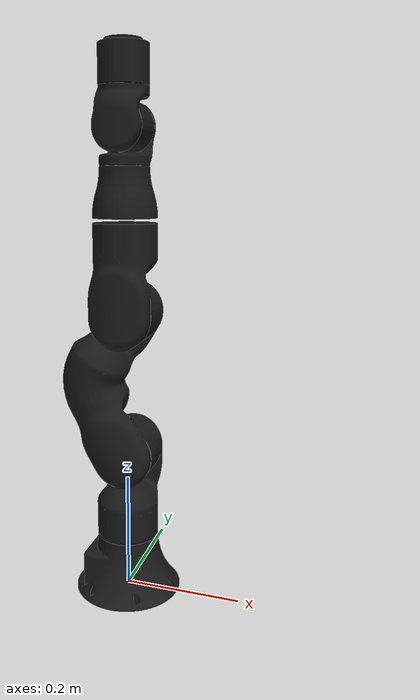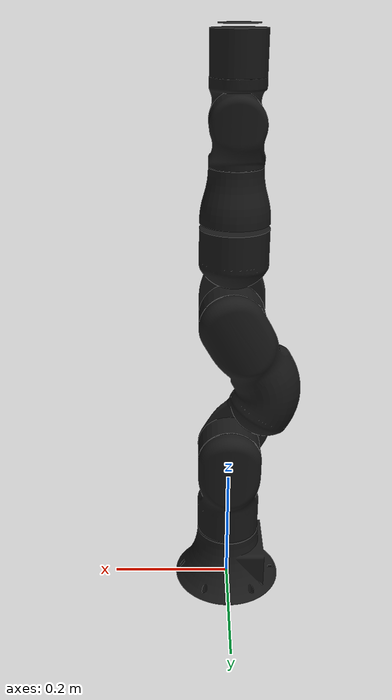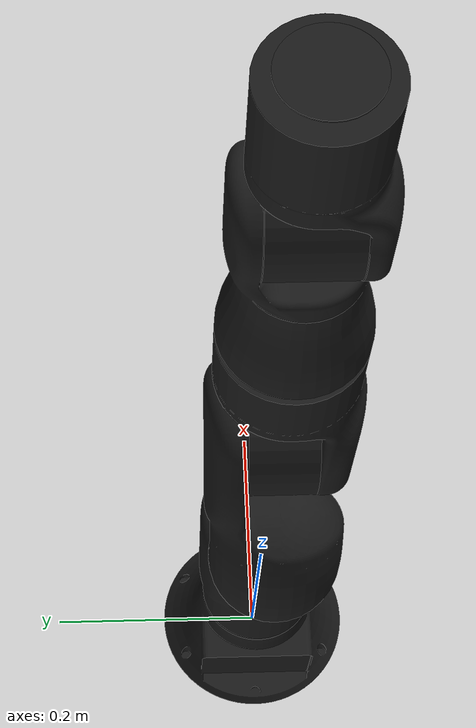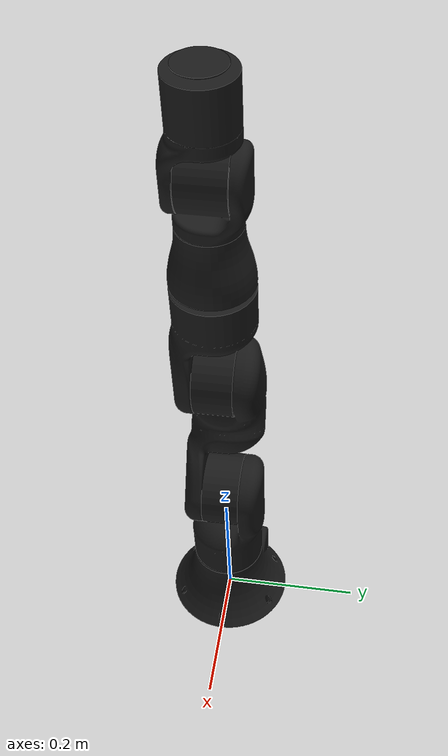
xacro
<?xml version="1.0"?>
<robot xmlns:xacro="http://www.ros.org/wiki/xacro" name="igus_rebel">

	<!-- Set both at 0.0 if collapsing is not interested in gazebo -->
	<xacro:property name="damping" value="0.0" />
	<xacro:property name="friction" value="0.0" />

	<link name="world" />
	<joint name="world_joint" type="fixed">
		<parent link="world" />
		<child link="base_link" />
	</joint>

	<link name="base_link" />
	<joint name="base_link_to_igus_rebel" type="fixed">
		<parent link="base_link" />
		<child link="igus_rebel_base_link" />
		<origin xyz="0.0 0.0 0.0" rpy="0.0 0.0 0.0" />
	</joint>

	<material name="dark_grey">
		<color rgba="${25/255.0} ${25/255.0} ${25/255.0} 1.000" />
	</material>

	<link name="igus_rebel_base_link">
		<visual>
			<geometry>
				<mesh
						filename="file://$(find igus_rebel_description_ros2)/meshes/igus_rebel/Joint0.dae" />
			</geometry>
			<material name="dark_grey" />
		</visual>
		<collision>
			<geometry>
				<mesh
						filename="file://$(find igus_rebel_description_ros2)/meshes/igus_rebel_mod/Joint0.stl"
						scale="0.0001 0.0001 0.0001" />
			</geometry>
		</collision>
		<inertial>
			<mass value="1.0" />
			<inertia ixx="1.0" ixy="0.0" ixz="0.0" iyy="1.0" iyz="0.0" izz="1.0" />
		</inertial>
	</link>

	<joint name="joint1" type="revolute">
		<parent link="igus_rebel_base_link" />
		<child link="link_1" />
		<origin rpy="0.0 0.0 0.0" xyz="0.0 0 0.103" />
		<axis xyz="0 0 1" />
		<limit effort="330.0" lower="${-pi*179/180}" upper="${pi*179/180}" velocity="${pi/4.0}" />
		<dynamics damping="${damping}" friction="${friction}" />
	</joint>

	<link name="link_1">
		<visual>
			<geometry>
				<mesh
						filename="file://$(find igus_rebel_description_ros2)/meshes/igus_rebel/Joint1.dae" />
			</geometry>
			<origin rpy="0 0 0" xyz="0 0 0" />
			<material name="dark_grey" />
		</visual>
		<collision>
			<geometry>
				<mesh
						filename="file://$(find igus_rebel_description_ros2)/meshes/igus_rebel_mod/Joint1.stl"
						scale="0.0001 0.0001 0.0001" />
			</geometry>
			<origin rpy="0 0 0" xyz="0 0 0" />
		</collision>
		<inertial>
			<mass value="0.1" />
			<inertia ixx="0.03" ixy="0.0" ixz="0.0" iyy="0.03" iyz="0.0" izz="0.03" />
		</inertial>
	</link>

	<joint name="joint2" type="revolute">
		<parent link="link_1" />
		<child link="link_2" />
		<origin rpy="0.0 0.0 0.0" xyz="0.0 0.0 0.149" />
		<axis xyz="0 1 0" />
		<limit effort="330.0" lower="${-pi*80/180}" upper="${pi*140/180}" velocity="${pi/4.0}" />
		<dynamics damping="${damping}" friction="${friction}" />
	</joint>

	<link name="link_2">
		<visual>
			<geometry>
				<mesh
						filename="file://$(find igus_rebel_description_ros2)/meshes/igus_rebel/Joint2.dae" />
			</geometry>
			<origin rpy="0 0 0" xyz="0 0 0" />
			<material name="dark_grey" />
		</visual>
		<collision>
			<geometry>
				<mesh
						filename="file://$(find igus_rebel_description_ros2)/meshes/igus_rebel_mod/Joint2.stl"
						scale="0.0001 0.0001 0.0001" />
			</geometry>
			<origin rpy="0 0 0" xyz="0 0 0" />
		</collision>
		<inertial>
			<mass value="0.1" />
			<inertia ixx="0.03" ixy="0.0" ixz="0.0" iyy="0.03" iyz="0.0" izz="0.03" />
		</inertial>
	</link>

	<joint name="joint3" type="revolute">
		<parent link="link_2" />
		<child link="link_5" />
		<origin rpy="0.0 0.0 0.0" xyz="0.0 0.0 0.237" />
		<axis xyz="0 1 0" />
		<limit effort="330.0" lower="${-pi*80/180}" upper="${pi*140/180}" velocity="${pi/4.0}" />
		<dynamics damping="${damping}" friction="${friction}" />
	</joint>

	<link name="link_5">
		<visual>
			<geometry>
				<mesh
						filename="file://$(find igus_rebel_description_ros2)/meshes/igus_rebel/Joint3.dae" />
			</geometry>
			<origin rpy="0 0 0" xyz="0 0 0" />
			<material name="dark_grey" />
		</visual>
		<collision>
			<geometry>
				<mesh
						filename="file://$(find igus_rebel_description_ros2)/meshes/igus_rebel_mod/Joint3.stl"
						scale="0.0001 0.0001 0.0001" />
			</geometry>
			<origin rpy="0 0 0" xyz="0 0 0" />
		</collision>
		<inertial>
			<mass value="0.1" />
			<inertia ixx="0.03" ixy="0.0" ixz="0.0" iyy="0.03" iyz="0.0" izz="0.03" />
		</inertial>
	</link>

	<joint name="joint4" type="revolute">
		<parent link="link_5" />
		<child link="link_6" />
		<origin rpy="0.0 0.0 0.0" xyz="0.0 0.0 0.127" />
		<axis xyz="0 0 1" />
		<limit effort="330.0" lower="${-pi*179/180}" upper="${pi*179/180}" velocity="${pi/4.0}" />
		<dynamics damping="${damping}" friction="${friction}" />
	</joint>

	<link name="link_6">
		<visual>
			<geometry>
				<mesh
						filename="file://$(find igus_rebel_description_ros2)/meshes/igus_rebel/Joint4.dae" />
			</geometry>
			<origin rpy="0 0 0" xyz="0 0 0" />
			<material name="dark_grey" />
		</visual>
		<collision>
			<geometry>
				<mesh
						filename="file://$(find igus_rebel_description_ros2)/meshes/igus_rebel_mod/Joint4.stl"
						scale="0.0001 0.0001 0.0001" />
			</geometry>
			<origin rpy="0 0 0" xyz="0 0 0" />
		</collision>
		<inertial>
			<mass value="0.1" />
			<inertia ixx="0.03" ixy="0.0" ixz="0.0" iyy="0.03" iyz="0.0" izz="0.03" />
		</inertial>
	</link>

	<joint name="joint5" type="revolute">
		<parent link="link_6" />
		<child link="link_7" />
		<origin rpy="0.0 0.0 0.0" xyz="0.0 0.0 0.170" />
		<axis xyz="0 1 0" />
		<limit effort="330.0" lower="${-pi/2.0}" upper="${pi/2.0}" velocity="${pi/4.0}" />
		<dynamics damping="${damping}" friction="${friction}" />
	</joint>

	<link name="link_7">
		<visual>
			<geometry>
				<mesh
						filename="file://$(find igus_rebel_description_ros2)/meshes/igus_rebel/Joint5.dae" />
			</geometry>
			<origin rpy="0 0 0" xyz="0 0 0" />
			<material name="dark_grey" />
		</visual>
		<collision>
			<geometry>
				<mesh
						filename="file://$(find igus_rebel_description_ros2)/meshes/igus_rebel_mod/Joint5.stl"
						scale="0.0001 0.0001 0.0001" />
			</geometry>
			<origin rpy="0 0 0" xyz="0 0 0" />
		</collision>
		<inertial>
			<mass value="0.1" />
			<inertia ixx="0.03" ixy="0.0" ixz="0.0" iyy="0.03" iyz="0.0" izz="0.03" />
		</inertial>
	</link>

	<joint name="joint6" type="revolute">
		<parent link="link_7" />
		<child link="link_8" />
		<origin rpy="0.0 0.0 0.0" xyz="0.0 0 0.126" />
		<axis xyz="0 0 1" />
		<limit effort="330.0" lower="${-pi*179/180}" upper="${pi*179/180}" velocity="${pi/4.0}" />
		<dynamics damping="${damping}" friction="${friction}" />
	</joint>

	<link name="link_8">
		<visual>
			<geometry>
				<mesh
						filename="file://$(find igus_rebel_description_ros2)/meshes/igus_rebel/Joint6.dae" />
			</geometry>
			<origin rpy="0 0 0" xyz="0.0 0 0" />
			<material name="dark_grey" />
		</visual>
		<collision>
			<geometry>
				<mesh
						filename="file://$(find igus_rebel_description_ros2)/meshes/igus_rebel_mod/Joint6.stl"
						scale="0.0001 0.0001 0.0001" />
			</geometry>
			<origin rpy="0 0 0" xyz="0.0 0 0" />
		</collision>
		<inertial>
			<mass value="0.1" />
			<inertia ixx="0.03" ixy="0.0" ixz="0.0" iyy="0.03" iyz="0.0" izz="0.03" />
		</inertial>
	</link>

	<joint name="joint7" type="fixed">
		<parent link="link_8" />
		<child link="flange" />
		<origin rpy="0.0 ${-pi/2} 0.0" xyz="0.0 0.0 0.0" />
		<axis xyz="0 0 0" />
		<dynamics damping="${damping}" friction="${friction}" />
	</joint>

	<link name="flange" />

	<ros2_control name="igus_rebel" type="system">
		<hardware>
			<plugin>ign_ros2_control/IgnitionSystem</plugin>
		</hardware>

		<xacro:macro name="rebel_joint" params="name position_min=0 position_max=0 cri_joint_offset=0">
			<joint name="${name}">

				<command_interface name="velocity">
					<param name="min">${-pi/4}</param>
					<param name="max">${pi/4}</param>
				</command_interface>

				<state_interface name="position">
					<param name="initial_value">0.0</param>
				</state_interface>

				<state_interface name="velocity">
					<param name="initial_value">0.0</param>
				</state_interface>

				<!-- CRI specific parameters -->
				<param name="cri_joint_offset">${cri_joint_offset}</param>
			</joint>
		</xacro:macro>

		<!-- CRI joints offset for virtual zero definition -->

		<xacro:rebel_joint name="joint1" position_min="${-pi*179/180}"
						   position_max="${pi*179/180}" />
		<xacro:rebel_joint name="joint2" position_min="${-pi*2/3}" position_max="${pi*2/3}" />
		<xacro:rebel_joint name="joint3" position_min="${-pi*2/3}" position_max="${pi*2/3}" />
		<xacro:rebel_joint name="joint4" position_min="${-pi*179/180}"
						   position_max="${pi*179/180}" />
		<xacro:rebel_joint name="joint5" position_min="${-pi*19/36}" position_max="${pi*19/36}" />
		<xacro:rebel_joint name="joint6" position_min="${-pi*179/180}"
						   position_max="${pi*179/180}" />

	</ros2_control>

	<gazebo>
		<plugin filename="ign_ros2_control-system" name="ign_ros2_control::IgnitionROS2ControlPlugin">
			<parameters>$(find igus_rebel_moveit_config)/config/gazebo_controllers.yaml</parameters>
		</plugin>
	</gazebo>

</robot>
